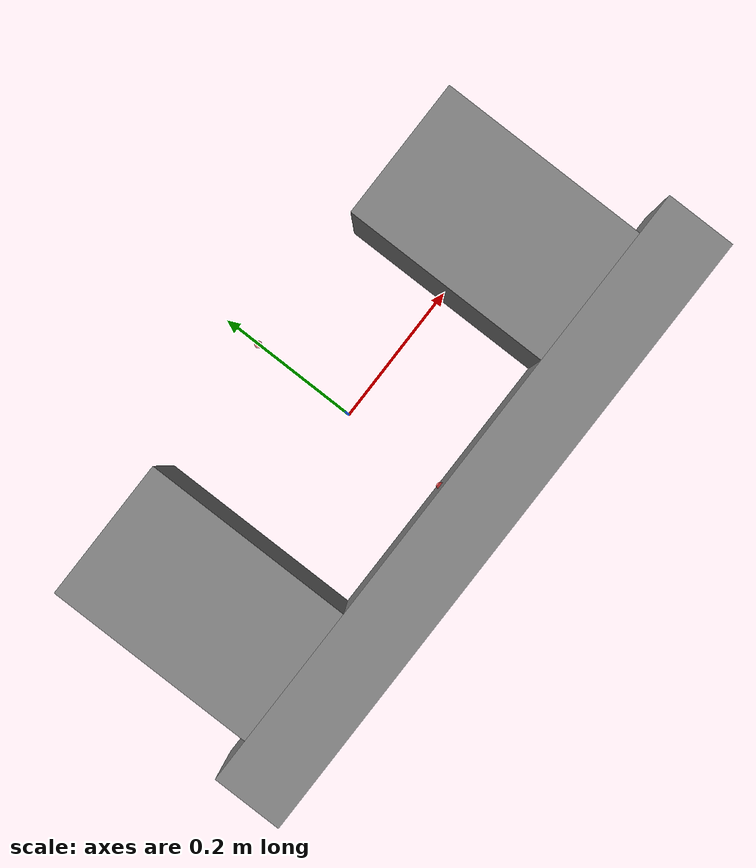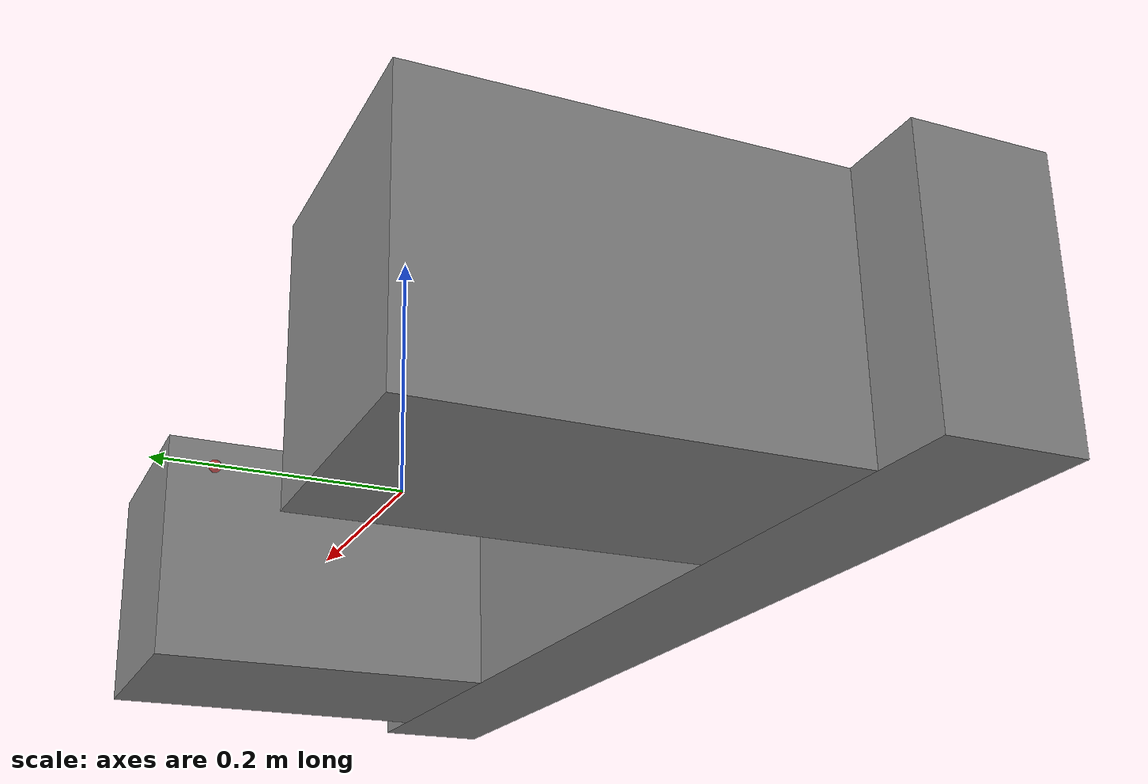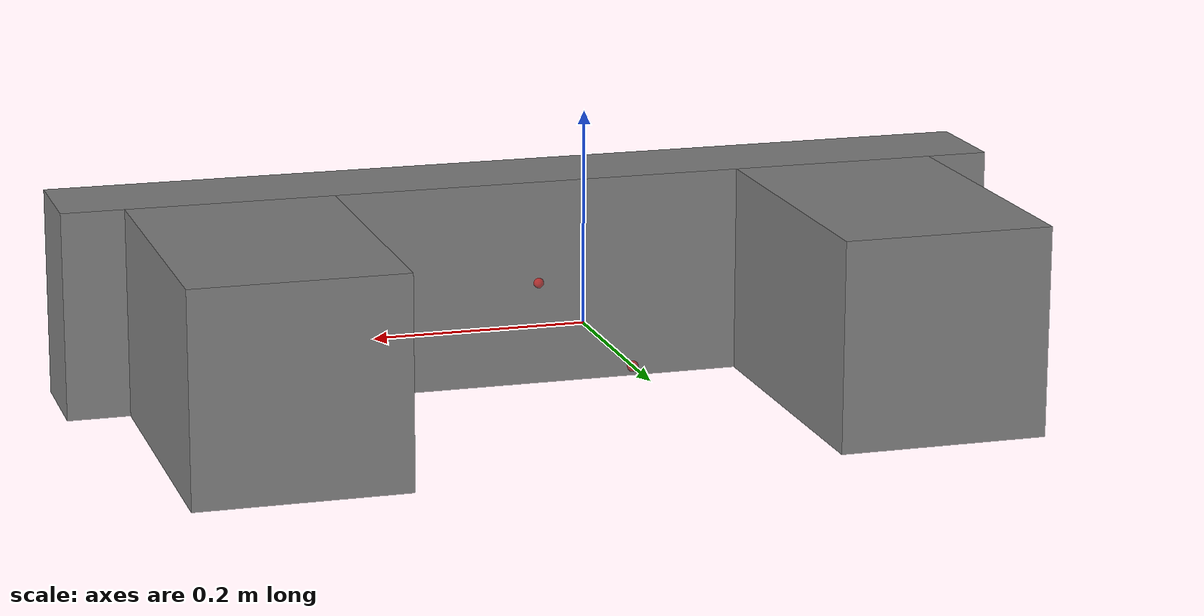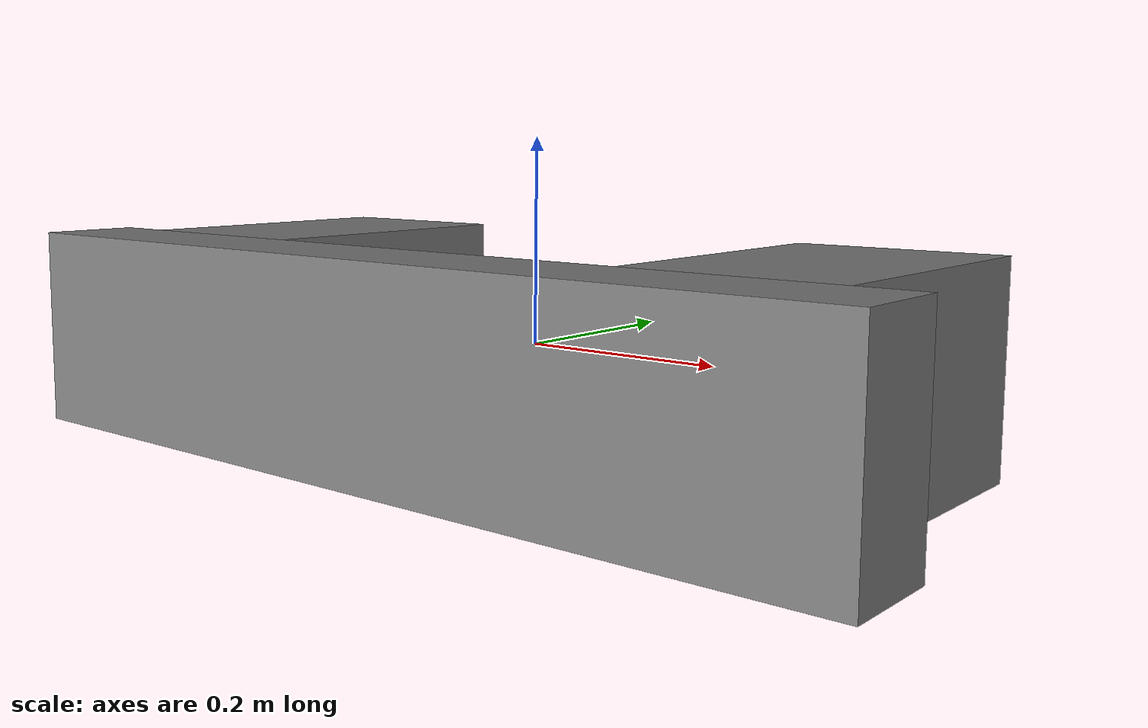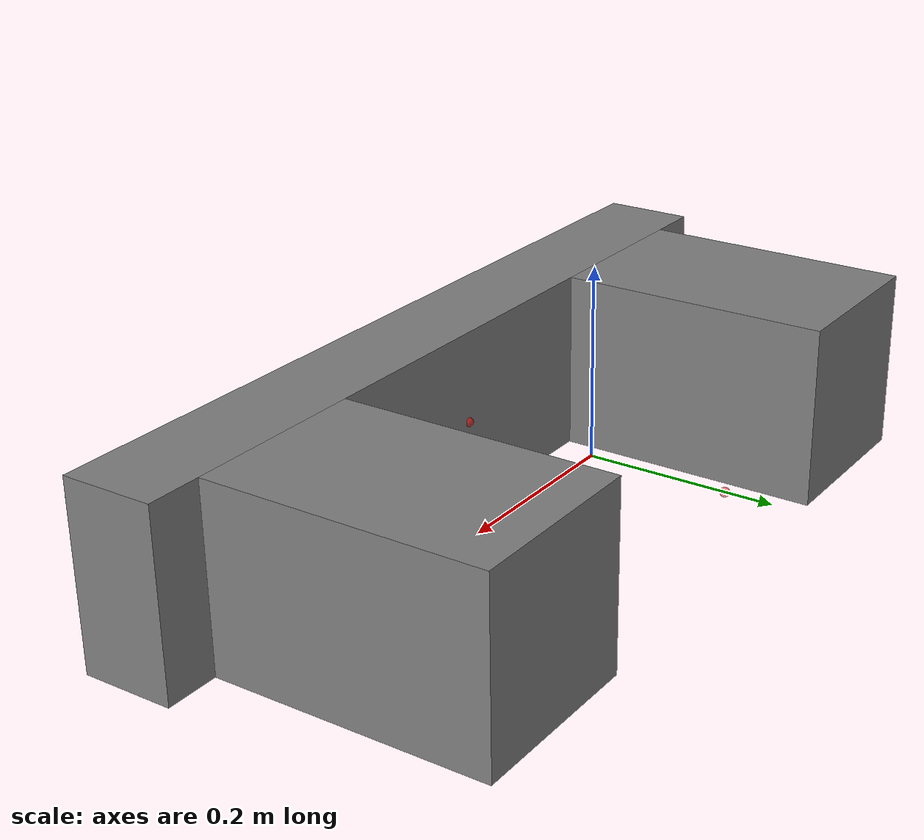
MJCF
<mujoco model="block_slot">
  <worldbody>
        <body>
          <body name = "object" pos="0 0 0">
              <geom type="box" pos="-0.30 0 0" size="0.1 0.15 0.1" group="0"/>
              <geom type="box" pos="-0.30 0 0" size="0.1 0.15 0.1" group="1"/>
              <geom type="box" pos="0.30 0 0" size="0.1 0.15 0.1" group="0"/>
              <geom type="box" pos="0.30 0 0" size="0.1 0.15 0.1" group="1"/>
              <geom type="box" pos="0 -0.2 0" size="0.46 0.05 0.1" group="1"/>

          </body>
          <site rgba="1. 0 0 0.5" size="0.005" pos="0 0.15 0" name="target_site"/>
          <site rgba="1. 0 0 0.5" size="0.005" pos="0 -0.15 0" name="bottom_site"/>
        </body>
  </worldbody>

</mujoco>
